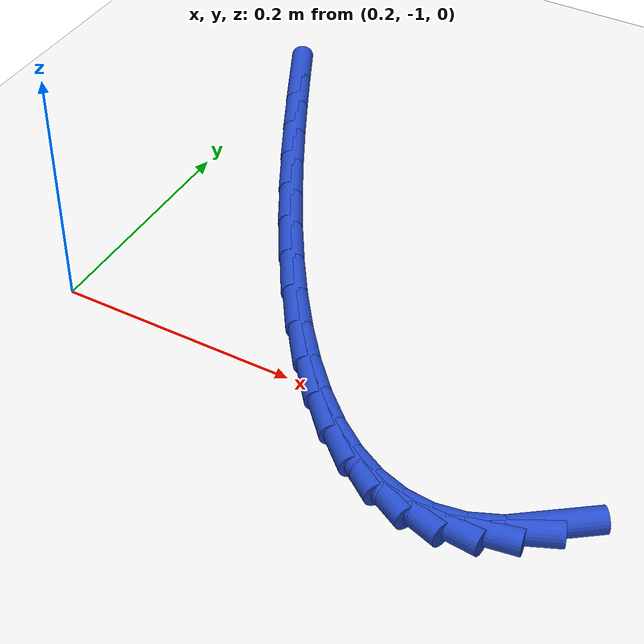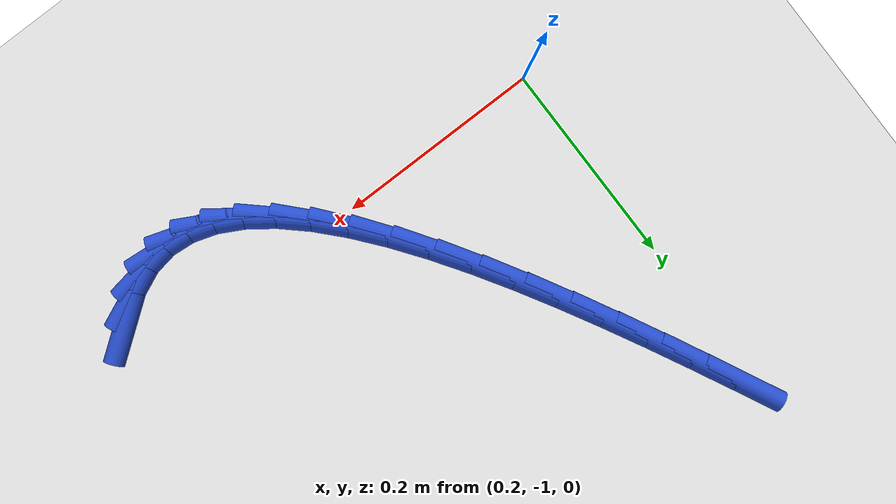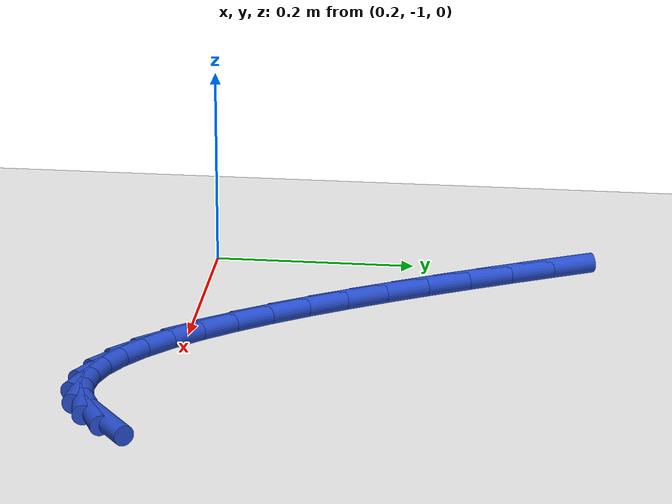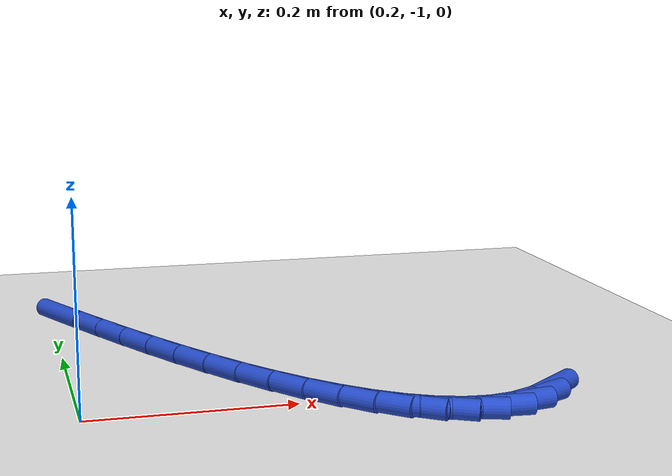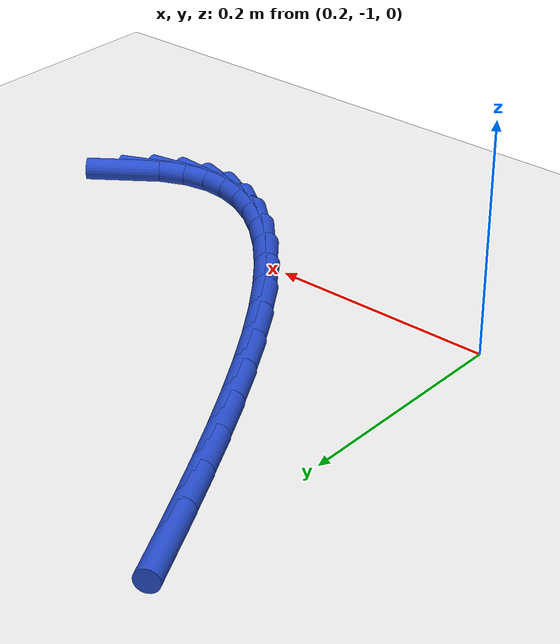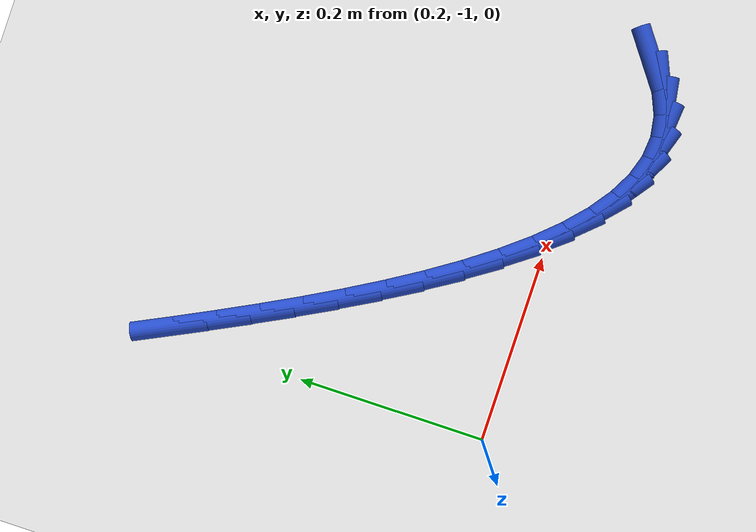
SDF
<sdf version="1.6">
 <world name="default">
  <model name="ground_plane">
   <static>1</static>
   <link name="link">
    <collision name="collision">
     <geometry><plane><normal>0 0 1</normal><size>100 100</size></plane></geometry>
     <surface><friction><ode><mu>100</mu><mu2>50</mu2></ode></friction></surface>
    </collision>
    <visual name="visual">
     <cast_shadows>0</cast_shadows>
     <geometry><plane><normal>0 0 1</normal><size>100 100</size></plane></geometry>
     <material>
      <script><uri>file://media/materials/scripts/gazebo.material</uri><name>Gazebo/WhiteGlow</name></script>
     </material>
    </visual>
   </link>
  </model>
  <model name="line">
   <link name="link_192">
    <pose>0.6275889960402797 -1.0432191160058253 0.01 0 1.57 0.6347994278776518</pose>
    <collision name="collision">
     <geometry><cylinder><radius>0.01</radius><length>0.08</length></cylinder></geometry>
    </collision>
    <visual name="visual">
     <material>
      <script><name>Gazebo/Blue</name><uri>file://media/materials/scripts/gazebo.material</uri></script>
     </material>
     <geometry><cylinder><radius>0.01</radius><length>0.08</length></cylinder></geometry>
    </visual>
   </link>
   <link name="link_193">
    <pose>0.6038032372659702 -1.0607371238078815 0.01 0 1.57 0.41366640356619894</pose>
    <collision name="collision">
     <geometry><cylinder><radius>0.01</radius><length>0.08</length></cylinder></geometry>
    </collision>
    <visual name="visual">
     <material>
      <script><name>Gazebo/Blue</name><uri>file://media/materials/scripts/gazebo.material</uri></script>
     </material>
     <geometry><cylinder><radius>0.01</radius><length>0.08</length></cylinder></geometry>
    </visual>
   </link>
   <link name="link_194">
    <pose>0.5798198488548129 -1.0712657637928606 0.01 0 1.57 0.16376040198699177</pose>
    <collision name="collision">
     <geometry><cylinder><radius>0.01</radius><length>0.08</length></cylinder></geometry>
    </collision>
    <visual name="visual">
     <material>
      <script><name>Gazebo/Blue</name><uri>file://media/materials/scripts/gazebo.material</uri></script>
     </material>
     <geometry><cylinder><radius>0.01</radius><length>0.08</length></cylinder></geometry>
    </visual>
   </link>
   <link name="link_195">
    <pose>0.5556903562747044 -1.0752529249394942 0.01 0 1.57 -0.08672976939431778</pose>
    <collision name="collision">
     <geometry><cylinder><radius>0.01</radius><length>0.08</length></cylinder></geometry>
    </collision>
    <visual name="visual">
     <material>
      <script><name>Gazebo/Blue</name><uri>file://media/materials/scripts/gazebo.material</uri></script>
     </material>
     <geometry><cylinder><radius>0.01</radius><length>0.08</length></cylinder></geometry>
    </visual>
   </link>
   <link name="link_196">
    <pose>0.5314662934064851 -1.0731466938423702 0.01 0 1.57 -0.30918196227589567</pose>
    <collision name="collision">
     <geometry><cylinder><radius>0.01</radius><length>0.08</length></cylinder></geometry>
    </collision>
    <visual name="visual">
     <material>
      <script><name>Gazebo/Blue</name><uri>file://media/materials/scripts/gazebo.material</uri></script>
     </material>
     <geometry><cylinder><radius>0.01</radius><length>0.08</length></cylinder></geometry>
    </visual>
   </link>
   <link name="link_197">
    <pose>0.5071991941309931 -1.0653951570960756 0.01 0 1.57 -0.49030499115916526</pose>
    <collision name="collision">
     <geometry><cylinder><radius>0.01</radius><length>0.08</length></cylinder></geometry>
    </collision>
    <visual name="visual">
     <material>
      <script><name>Gazebo/Blue</name><uri>file://media/materials/scripts/gazebo.material</uri></script>
     </material>
     <geometry><cylinder><radius>0.01</radius><length>0.08</length></cylinder></geometry>
    </visual>
   </link>
   <link name="link_198">
    <pose>0.48294059232906994 -1.0524464012951993 0.01 0 1.57 -0.6314649763518105</pose>
    <collision name="collision">
     <geometry><cylinder><radius>0.01</radius><length>0.08</length></cylinder></geometry>
    </collision>
    <visual name="visual">
     <material>
      <script><name>Gazebo/Blue</name><uri>file://media/materials/scripts/gazebo.material</uri></script>
     </material>
     <geometry><cylinder><radius>0.01</radius><length>0.08</length></cylinder></geometry>
    </visual>
   </link>
   <link name="link_199">
    <pose>0.45874202188155455 -1.0347485130343286 0.01 0 1.57 -0.740120925856822</pose>
    <collision name="collision">
     <geometry><cylinder><radius>0.01</radius><length>0.08</length></cylinder></geometry>
    </collision>
    <visual name="visual">
     <material>
      <script><name>Gazebo/Blue</name><uri>file://media/materials/scripts/gazebo.material</uri></script>
     </material>
     <geometry><cylinder><radius>0.01</radius><length>0.08</length></cylinder></geometry>
    </visual>
   </link>
   <link name="link_200">
    <pose>0.4346550166692864 -1.0127495789080514 0.01 0 1.57 -0.824112237605559</pose>
    <collision name="collision">
     <geometry><cylinder><radius>0.01</radius><length>0.08</length></cylinder></geometry>
    </collision>
    <visual name="visual">
     <material>
      <script><name>Gazebo/Blue</name><uri>file://media/materials/scripts/gazebo.material</uri></script>
     </material>
     <geometry><cylinder><radius>0.01</radius><length>0.08</length></cylinder></geometry>
    </visual>
   </link>
   <link name="link_201">
    <pose>0.41073111057310474 -0.9868976855109548 0.01 0 1.57 -0.8897544751382684</pose>
    <collision name="collision">
     <geometry><cylinder><radius>0.01</radius><length>0.08</length></cylinder></geometry>
    </collision>
    <visual name="visual">
     <material>
      <script><name>Gazebo/Blue</name><uri>file://media/materials/scripts/gazebo.material</uri></script>
     </material>
     <geometry><cylinder><radius>0.01</radius><length>0.08</length></cylinder></geometry>
    </visual>
   </link>
   <link name="link_202">
    <pose>0.38702183747385044 -0.9576409194376282 0.01 0 1.57 -0.941694166509581</pose>
    <collision name="collision">
     <geometry><cylinder><radius>0.01</radius><length>0.08</length></cylinder></geometry>
    </collision>
    <visual name="visual">
     <material>
      <script><name>Gazebo/Blue</name><uri>file://media/materials/scripts/gazebo.material</uri></script>
     </material>
     <geometry><cylinder><radius>0.01</radius><length>0.08</length></cylinder></geometry>
    </visual>
   </link>
   <link name="link_203">
    <pose>0.3635787312523627 -0.9254273672826586 0.01 0 1.57 -0.9832477054024423</pose>
    <collision name="collision">
     <geometry><cylinder><radius>0.01</radius><length>0.08</length></cylinder></geometry>
    </collision>
    <visual name="visual">
     <material>
      <script><name>Gazebo/Blue</name><uri>file://media/materials/scripts/gazebo.material</uri></script>
     </material>
     <geometry><cylinder><radius>0.01</radius><length>0.08</length></cylinder></geometry>
    </visual>
   </link>
   <link name="link_204">
    <pose>0.3404533257894809 -0.8907051156406341 0.01 0 1.57 -1.0167674601006746</pose>
    <collision name="collision">
     <geometry><cylinder><radius>0.01</radius><length>0.08</length></cylinder></geometry>
    </collision>
    <visual name="visual">
     <material>
      <script><name>Gazebo/Blue</name><uri>file://media/materials/scripts/gazebo.material</uri></script>
     </material>
     <geometry><cylinder><radius>0.01</radius><length>0.08</length></cylinder></geometry>
    </visual>
   </link>
   <link name="link_205">
    <pose>0.31769715496604495 -0.8539222511061421 0.01 0 1.57 -1.0439257624256733</pose>
    <collision name="collision">
     <geometry><cylinder><radius>0.01</radius><length>0.08</length></cylinder></geometry>
    </collision>
    <visual name="visual">
     <material>
      <script><name>Gazebo/Blue</name><uri>file://media/materials/scripts/gazebo.material</uri></script>
     </material>
     <geometry><cylinder><radius>0.01</radius><length>0.08</length></cylinder></geometry>
    </visual>
   </link>
   <link name="link_206">
    <pose>0.2953617526628938 -0.8155268602737696 0.01 0 1.57 -1.0659138814217928</pose>
    <collision name="collision">
     <geometry><cylinder><radius>0.01</radius><length>0.08</length></cylinder></geometry>
    </collision>
    <visual name="visual">
     <material>
      <script><name>Gazebo/Blue</name><uri>file://media/materials/scripts/gazebo.material</uri></script>
     </material>
     <geometry><cylinder><radius>0.01</radius><length>0.08</length></cylinder></geometry>
    </visual>
   </link>
   <link name="link_207">
    <pose>0.2734986527608683 -0.7759670297381065 0.01 0 1.57 -1.0835756473463851</pose>
    <collision name="collision">
     <geometry><cylinder><radius>0.01</radius><length>0.08</length></cylinder></geometry>
    </collision>
    <visual name="visual">
     <material>
      <script><name>Gazebo/Blue</name><uri>file://media/materials/scripts/gazebo.material</uri></script>
     </material>
     <geometry><cylinder><radius>0.01</radius><length>0.08</length></cylinder></geometry>
    </visual>
   </link>
   <link name="link_208">
    <pose>0.2521593891408076 -0.7356908460937397 0.01 0 1.57 -1.0974945279648385</pose>
    <collision name="collision">
     <geometry><cylinder><radius>0.01</radius><length>0.08</length></cylinder></geometry>
    </collision>
    <visual name="visual">
     <material>
      <script><name>Gazebo/Blue</name><uri>file://media/materials/scripts/gazebo.material</uri></script>
     </material>
     <geometry><cylinder><radius>0.01</radius><length>0.08</length></cylinder></geometry>
    </visual>
   </link>
   <link name="link_209">
    <pose>0.23139549568355144 -0.6951463959352567 0.01 0 1.57 -1.1080474448387359</pose>
    <collision name="collision">
     <geometry><cylinder><radius>0.01</radius><length>0.08</length></cylinder></geometry>
    </collision>
    <visual name="visual">
     <material>
      <script><name>Gazebo/Blue</name><uri>file://media/materials/scripts/gazebo.material</uri></script>
     </material>
     <geometry><cylinder><radius>0.01</radius><length>0.08</length></cylinder></geometry>
    </visual>
   </link>
   <link name="link_210">
    <pose>0.21125850626993883 -0.6547817658572447 0.01 0 1.57 -1.1154332130814444</pose>
    <collision name="collision">
     <geometry><cylinder><radius>0.01</radius><length>0.08</length></cylinder></geometry>
    </collision>
    <visual name="visual">
     <material>
      <script><name>Gazebo/Blue</name><uri>file://media/materials/scripts/gazebo.material</uri></script>
     </material>
     <geometry><cylinder><radius>0.01</radius><length>0.08</length></cylinder></geometry>
    </visual>
   </link>
  </model>
 </world>
</sdf>
